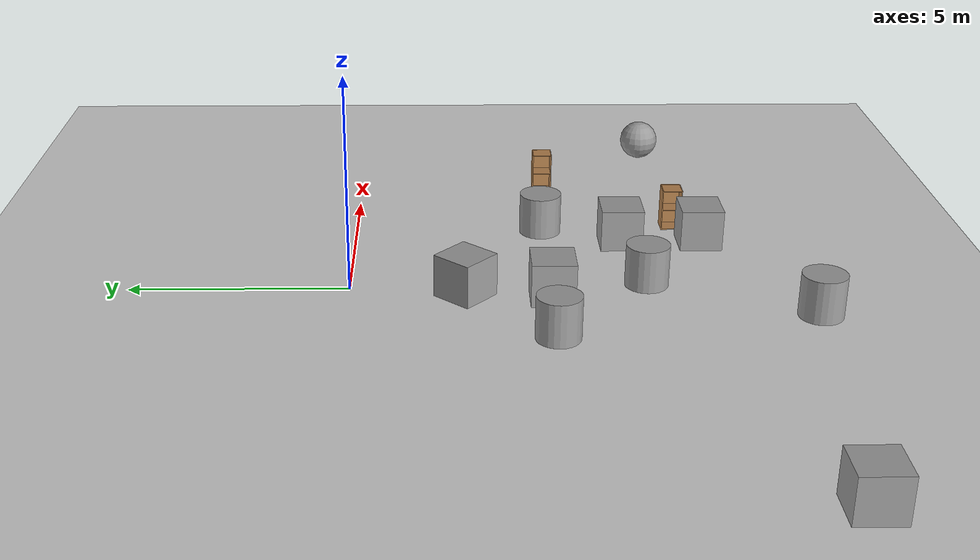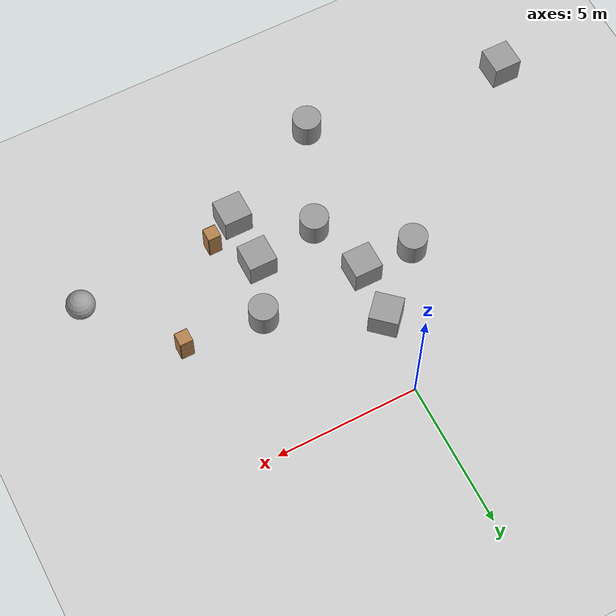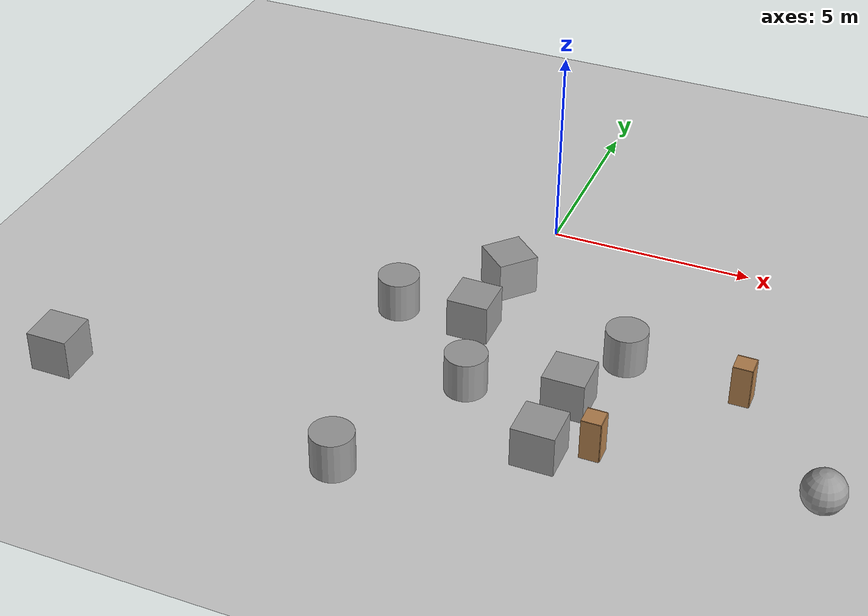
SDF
<sdf version="1.7">
 <world name="default">
  <model name="ground_plane">
   <static>1</static>
   <link name="link">
    <collision name="collision">
     <geometry><plane><normal>0 0 1</normal><size>100 100</size></plane></geometry>
     <surface>
      <contact><collide_bitmask>65535</collide_bitmask></contact>
      <friction><ode><mu>100</mu><mu2>50</mu2></ode></friction>
     </surface>
    </collision>
    <visual name="visual">
     <cast_shadows>0</cast_shadows>
     <geometry><plane><normal>0 0 1</normal><size>100 100</size></plane></geometry>
     <material>
      <script><uri>file://media/materials/scripts/gazebo.material</uri><name>Gazebo/Grey</name></script>
     </material>
    </visual>
   </link>
  </model>
  <model name="unit_box">
   <pose>2.48421 -8.27896 0.499995 1e-05 -0 -5e-06</pose>
   <link name="link">
    <inertial>
     <mass>1</mass>
     <inertia>
      <ixx>0.166667</ixx>
      <ixy>0</ixy>
      <ixz>0</ixz>
      <iyy>0.166667</iyy>
      <iyz>0</iyz>
      <izz>0.166667</izz>
     </inertia>
    </inertial>
    <collision name="collision"><geometry><box><size>1 1 1</size></box></geometry></collision>
    <visual name="visual">
     <geometry><box><size>1 1 1</size></box></geometry>
     <material>
      <script><name>Gazebo/Grey</name><uri>file://media/materials/scripts/gazebo.material</uri></script>
     </material>
    </visual>
   </link>
  </model>
  <model name="unit_box_0">
   <pose>2.50054 -6.38023 0.499995 1e-05 -0 -5e-06</pose>
   <link name="link">
    <inertial>
     <mass>1</mass>
     <inertia>
      <ixx>0.166667</ixx>
      <ixy>0</ixy>
      <ixz>0</ixz>
      <iyy>0.166667</iyy>
      <iyz>0</iyz>
      <izz>0.166667</izz>
     </inertia>
    </inertial>
    <collision name="collision"><geometry><box><size>1 1 1</size></box></geometry></collision>
    <visual name="visual">
     <geometry><box><size>1 1 1</size></box></geometry>
     <material>
      <script><name>Gazebo/Grey</name><uri>file://media/materials/scripts/gazebo.material</uri></script>
     </material>
    </visual>
   </link>
  </model>
  <model name="unit_box_1">
   <pose>-8.74813 -9.43295 0.499995 1e-05 -0 -5e-06</pose>
   <link name="link">
    <inertial>
     <mass>1</mass>
     <inertia>
      <ixx>0.166667</ixx>
      <ixy>0</ixy>
      <ixz>0</ixz>
      <iyy>0.166667</iyy>
      <iyz>0</iyz>
      <izz>0.166667</izz>
     </inertia>
    </inertial>
    <collision name="collision"><geometry><box><size>1 1 1</size></box></geometry></collision>
    <visual name="visual">
     <geometry><box><size>1 1 1</size></box></geometry>
     <material>
      <script><name>Gazebo/Grey</name><uri>file://media/materials/scripts/gazebo.material</uri></script>
     </material>
    </visual>
   </link>
  </model>
  <model name="unit_cylinder_2">
   <pose>3.22418 -4.49249 0.499998 3e-06 -3e-06 2e-05</pose>
   <link name="link">
    <inertial>
     <mass>1</mass>
     <inertia><ixx>0.145833</ixx><ixy>0</ixy><ixz>0</ixz><iyy>0.145833</iyy><iyz>0</iyz><izz>0.125</izz></inertia>
    </inertial>
    <collision name="collision">
     <geometry><cylinder><radius>0.5</radius><length>1</length></cylinder></geometry>
    </collision>
    <visual name="visual">
     <geometry><cylinder><radius>0.5</radius><length>1</length></cylinder></geometry>
     <material>
      <script><name>Gazebo/Grey</name><uri>file://media/materials/scripts/gazebo.material</uri></script>
     </material>
    </visual>
   </link>
  </model>
  <model name="cabinet_clone_clone_0">
   <static>1</static>
   <link name="cabinet_bottom_plate">
    <inertial>
     <pose>0 0 -1 0 -0 0</pose>
     <inertia><ixx>2.05</ixx><ixy>0</ixy><ixz>0</ixz><iyy>2.05</iyy><iyz>0</iyz><izz>2.05</izz></inertia>
     <mass>25</mass>
    </inertial>
    <collision name="cabinet_bottom_plate_geom">
     <pose>0 0 0.01 0 -0 0</pose>
     <geometry><box><size>0.45 0.45 0.02</size></box></geometry>
    </collision>
    <visual name="cabinet_bottom_plate_geom_visual">
     <pose>0 0 0.01 0 -0 0</pose>
     <geometry><box><size>0.45 0.45 0.02</size></box></geometry>
     <material>
      <script><uri>file://media/materials/scripts/gazebo.material</uri><name>Gazebo/Wood</name></script>
     </material>
    </visual>
    <collision name="cabinet_bottom_plate_geom_cabinet_back_plate">
     <pose>0.235 0 0.51 0 -0 0</pose>
     <geometry><box><size>0.02 0.45 1.02</size></box></geometry>
    </collision>
    <visual name="cabinet_bottom_plate_geom_cabinet_back_plate_visual">
     <pose>0.235 0 0.51 0 -0 0</pose>
     <geometry><box><size>0.02 0.45 1.02</size></box></geometry>
     <material>
      <script><uri>file://media/materials/scripts/gazebo.material</uri><name>Gazebo/Wood</name></script>
     </material>
    </visual>
    <collision name="cabinet_bottom_plate_geom_cabinet_left_plate">
     <pose>0 0.235 0.51 0 -0 0</pose>
     <geometry><box><size>0.45 0.02 1.02</size></box></geometry>
    </collision>
    <visual name="cabinet_bottom_plate_geom_cabinet_left_plate_visual">
     <pose>0 0.235 0.51 0 -0 0</pose>
     <geometry><box><size>0.45 0.02 1.02</size></box></geometry>
     <material>
      <script><uri>file://media/materials/scripts/gazebo.material</uri><name>Gazebo/Wood</name></script>
     </material>
    </visual>
    <collision name="cabinet_bottom_plate_geom_cabinet_middle_plate">
     <pose>0 0 0.51 0 -0 0</pose>
     <geometry><box><size>0.45 0.45 0.02</size></box></geometry>
    </collision>
    <visual name="cabinet_bottom_plate_geom_cabinet_middle_plate_visual">
     <pose>0 0 0.51 0 -0 0</pose>
     <geometry><box><size>0.45 0.45 0.02</size></box></geometry>
     <material>
      <script><uri>file://media/materials/scripts/gazebo.material</uri><name>Gazebo/Wood</name></script>
     </material>
    </visual>
    <collision name="cabinet_bottom_plate_geom_cabinet_right_plate">
     <pose>0 -0.235 0.51 0 -0 0</pose>
     <geometry><box><size>0.45 0.02 1.02</size></box></geometry>
    </collision>
    <visual name="cabinet_bottom_plate_geom_cabinet_right_plate_visual">
     <pose>0 -0.235 0.51 0 -0 0</pose>
     <geometry><box><size>0.45 0.02 1.02</size></box></geometry>
     <material>
      <script><uri>file://media/materials/scripts/gazebo.material</uri><name>Gazebo/Wood</name></script>
     </material>
    </visual>
    <collision name="cabinet_bottom_plate_geom_cabinet_top_plate">
     <pose>0 0 1.01 0 -0 0</pose>
     <geometry><box><size>0.45 0.45 0.02</size></box></geometry>
    </collision>
    <visual name="cabinet_bottom_plate_geom_cabinet_top_plate_visual">
     <pose>0 0 1.01 0 -0 0</pose>
     <geometry><box><size>0.45 0.45 0.02</size></box></geometry>
     <material>
      <script><uri>file://media/materials/scripts/gazebo.material</uri><name>Gazebo/Wood</name></script>
     </material>
    </visual>
   </link>
   <pose>3.50513 -7.73957 0 0 -0 0</pose>
  </model>
  <model name="cabinet_clone_clone_0_clone">
   <static>1</static>
   <link name="cabinet_bottom_plate">
    <inertial>
     <pose>0 0 -1 0 -0 0</pose>
     <inertia><ixx>2.05</ixx><ixy>0</ixy><ixz>0</ixz><iyy>2.05</iyy><iyz>0</iyz><izz>2.05</izz></inertia>
     <mass>25</mass>
    </inertial>
    <collision name="cabinet_bottom_plate_geom">
     <pose>0 0 0.01 0 -0 0</pose>
     <geometry><box><size>0.45 0.45 0.02</size></box></geometry>
    </collision>
    <visual name="cabinet_bottom_plate_geom_visual">
     <pose>0 0 0.01 0 -0 0</pose>
     <geometry><box><size>0.45 0.45 0.02</size></box></geometry>
     <material>
      <script><uri>file://media/materials/scripts/gazebo.material</uri><name>Gazebo/Wood</name></script>
     </material>
    </visual>
    <collision name="cabinet_bottom_plate_geom_cabinet_back_plate">
     <pose>0.235 0 0.51 0 -0 0</pose>
     <geometry><box><size>0.02 0.45 1.02</size></box></geometry>
    </collision>
    <visual name="cabinet_bottom_plate_geom_cabinet_back_plate_visual">
     <pose>0.235 0 0.51 0 -0 0</pose>
     <geometry><box><size>0.02 0.45 1.02</size></box></geometry>
     <material>
      <script><uri>file://media/materials/scripts/gazebo.material</uri><name>Gazebo/Wood</name></script>
     </material>
    </visual>
    <collision name="cabinet_bottom_plate_geom_cabinet_left_plate">
     <pose>0 0.235 0.51 0 -0 0</pose>
     <geometry><box><size>0.45 0.02 1.02</size></box></geometry>
    </collision>
    <visual name="cabinet_bottom_plate_geom_cabinet_left_plate_visual">
     <pose>0 0.235 0.51 0 -0 0</pose>
     <geometry><box><size>0.45 0.02 1.02</size></box></geometry>
     <material>
      <script><uri>file://media/materials/scripts/gazebo.material</uri><name>Gazebo/Wood</name></script>
     </material>
    </visual>
    <collision name="cabinet_bottom_plate_geom_cabinet_middle_plate">
     <pose>0 0 0.51 0 -0 0</pose>
     <geometry><box><size>0.45 0.45 0.02</size></box></geometry>
    </collision>
    <visual name="cabinet_bottom_plate_geom_cabinet_middle_plate_visual">
     <pose>0 0 0.51 0 -0 0</pose>
     <geometry><box><size>0.45 0.45 0.02</size></box></geometry>
     <material>
      <script><uri>file://media/materials/scripts/gazebo.material</uri><name>Gazebo/Wood</name></script>
     </material>
    </visual>
    <collision name="cabinet_bottom_plate_geom_cabinet_right_plate">
     <pose>0 -0.235 0.51 0 -0 0</pose>
     <geometry><box><size>0.45 0.02 1.02</size></box></geometry>
    </collision>
    <visual name="cabinet_bottom_plate_geom_cabinet_right_plate_visual">
     <pose>0 -0.235 0.51 0 -0 0</pose>
     <geometry><box><size>0.45 0.02 1.02</size></box></geometry>
     <material>
      <script><uri>file://media/materials/scripts/gazebo.material</uri><name>Gazebo/Wood</name></script>
     </material>
    </visual>
    <collision name="cabinet_bottom_plate_geom_cabinet_top_plate">
     <pose>0 0 1.01 0 -0 0</pose>
     <geometry><box><size>0.45 0.45 0.02</size></box></geometry>
    </collision>
    <visual name="cabinet_bottom_plate_geom_cabinet_top_plate_visual">
     <pose>0 0 1.01 0 -0 0</pose>
     <geometry><box><size>0.45 0.45 0.02</size></box></geometry>
     <material>
      <script><uri>file://media/materials/scripts/gazebo.material</uri><name>Gazebo/Wood</name></script>
     </material>
    </visual>
   </link>
   <pose>6.00108 -4.69966 0 0 -0 0</pose>
  </model>
  <model name="unit_sphere_1">
   <pose>8.42978 -7.56664 0.5 0 -0 0</pose>
   <link name="link">
    <inertial>
     <mass>1</mass>
     <inertia><ixx>0.1</ixx><ixy>0</ixy><ixz>0</ixz><iyy>0.1</iyy><iyz>0</iyz><izz>0.1</izz></inertia>
    </inertial>
    <collision name="collision"><geometry><sphere><radius>0.5</radius></sphere></geometry></collision>
    <visual name="visual">
     <geometry><sphere><radius>0.5</radius></sphere></geometry>
     <material>
      <script><name>Gazebo/Grey</name><uri>file://media/materials/scripts/gazebo.material</uri></script>
     </material>
    </visual>
   </link>
  </model>
  <model name="unit_cylinder_4">
   <pose>-1.4259 -10.3254 0.499994 -4e-06 -2e-06 -0</pose>
   <link name="link">
    <inertial>
     <mass>1</mass>
     <inertia><ixx>0.145833</ixx><ixy>0</ixy><ixz>0</ixz><iyy>0.145833</iyy><iyz>0</iyz><izz>0.125</izz></inertia>
    </inertial>
    <collision name="collision">
     <geometry><cylinder><radius>0.5</radius><length>1</length></cylinder></geometry>
    </collision>
    <visual name="visual">
     <geometry><cylinder><radius>0.5</radius><length>1</length></cylinder></geometry>
     <material>
      <script><name>Gazebo/Grey</name><uri>file://media/materials/scripts/gazebo.material</uri></script>
     </material>
    </visual>
   </link>
  </model>
  <model name="unit_cylinder_7">
   <pose>-2.41697 -4.53514 0.499994 -4e-06 -2e-06 -0</pose>
   <link name="link">
    <inertial>
     <mass>1</mass>
     <inertia><ixx>0.145833</ixx><ixy>0</ixy><ixz>0</ixz><iyy>0.145833</iyy><iyz>0</iyz><izz>0.125</izz></inertia>
    </inertial>
    <collision name="collision">
     <geometry><cylinder><radius>0.5</radius><length>1</length></cylinder></geometry>
    </collision>
    <visual name="visual">
     <geometry><cylinder><radius>0.5</radius><length>1</length></cylinder></geometry>
     <material>
      <script><name>Gazebo/Grey</name><uri>file://media/materials/scripts/gazebo.material</uri></script>
     </material>
    </visual>
   </link>
  </model>
  <model name="unit_box_2">
   <pose>-0.482201 -4.53918 0.499995 1e-05 -0 -5e-06</pose>
   <link name="link">
    <inertial>
     <mass>1</mass>
     <inertia>
      <ixx>0.166667</ixx>
      <ixy>0</ixy>
      <ixz>0</ixz>
      <iyy>0.166667</iyy>
      <iyz>0</iyz>
      <izz>0.166667</izz>
     </inertia>
    </inertial>
    <collision name="collision"><geometry><box><size>1 1 1</size></box></geometry></collision>
    <visual name="visual">
     <geometry><box><size>1 1 1</size></box></geometry>
     <material>
      <script><name>Gazebo/Grey</name><uri>file://media/materials/scripts/gazebo.material</uri></script>
     </material>
    </visual>
   </link>
  </model>
  <model name="unit_cylinder_8">
   <pose>0.172832 -6.72776 0.499992 -3e-06 2e-06 0</pose>
   <link name="link">
    <inertial>
     <mass>1</mass>
     <inertia><ixx>0.145833</ixx><ixy>0</ixy><ixz>0</ixz><iyy>0.145833</iyy><iyz>0</iyz><izz>0.125</izz></inertia>
    </inertial>
    <collision name="collision">
     <geometry><cylinder><radius>0.5</radius><length>1</length></cylinder></geometry>
    </collision>
    <visual name="visual">
     <geometry><cylinder><radius>0.5</radius><length>1</length></cylinder></geometry>
     <material>
      <script><name>Gazebo/Grey</name><uri>file://media/materials/scripts/gazebo.material</uri></script>
     </material>
    </visual>
   </link>
  </model>
  <model name="unit_box_4">
   <pose>-0.335592 -2.60434 0.5 0 -0 0.83354</pose>
   <link name="link">
    <inertial>
     <mass>1</mass>
     <inertia>
      <ixx>0.166667</ixx>
      <ixy>0</ixy>
      <ixz>0</ixz>
      <iyy>0.166667</iyy>
      <iyz>0</iyz>
      <izz>0.166667</izz>
     </inertia>
    </inertial>
    <collision name="collision"><geometry><box><size>1 1 1</size></box></geometry></collision>
    <visual name="visual">
     <geometry><box><size>1 1 1</size></box></geometry>
     <material>
      <script><name>Gazebo/Grey</name><uri>file://media/materials/scripts/gazebo.material</uri></script>
     </material>
    </visual>
   </link>
  </model>
 </world>
</sdf>
